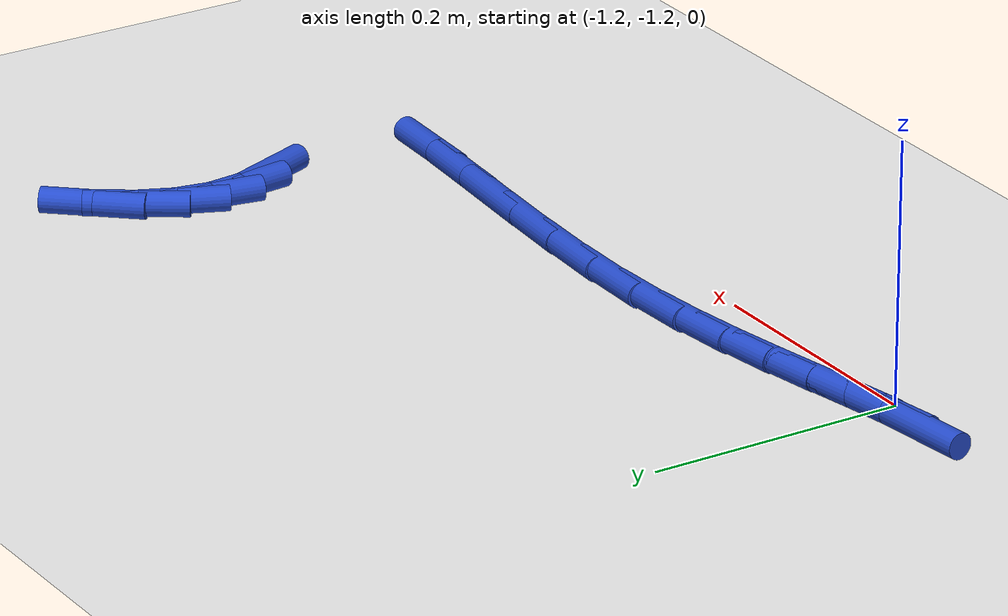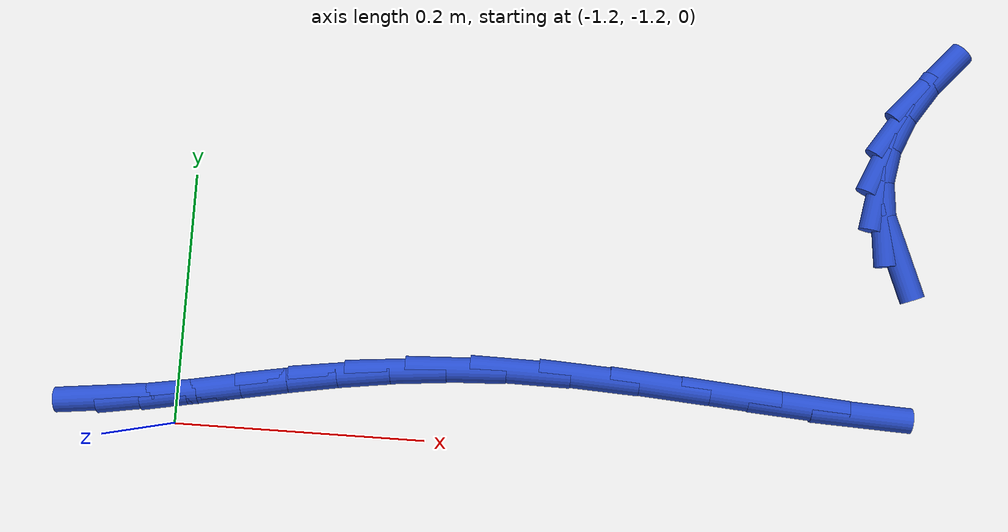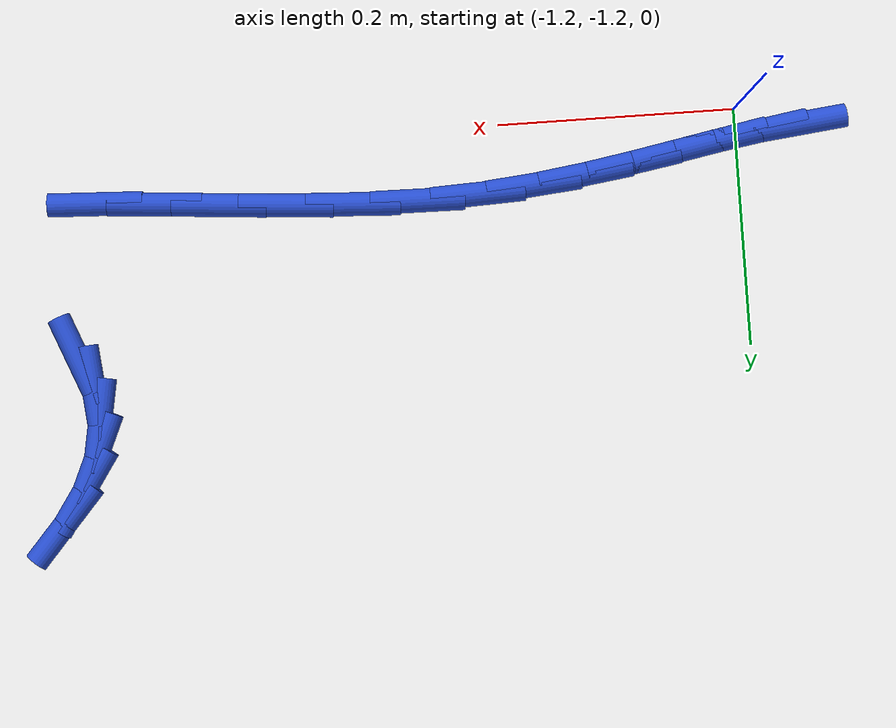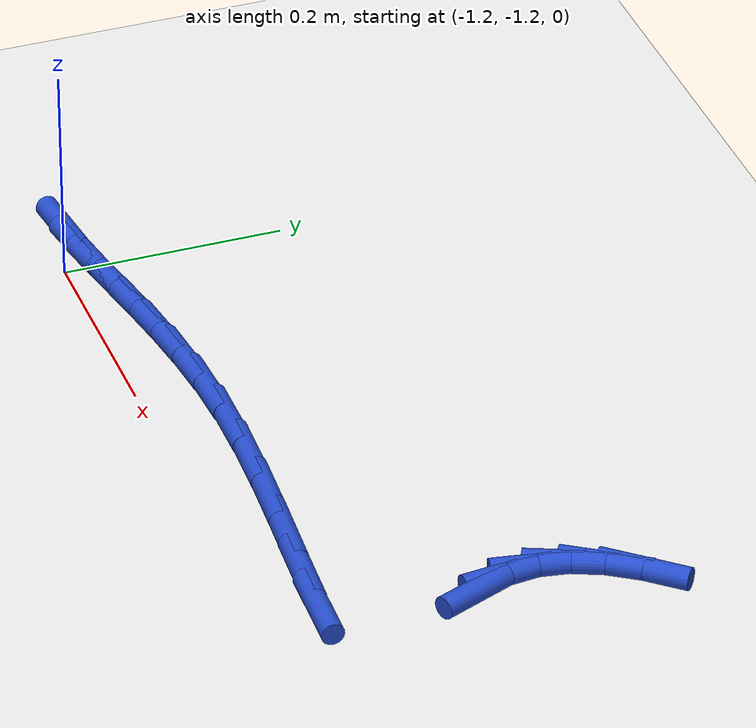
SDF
<sdf version="1.6">
 <world name="default">
  <model name="ground_plane">
   <static>1</static>
   <link name="link">
    <collision name="collision">
     <geometry><plane><normal>0 0 1</normal><size>100 100</size></plane></geometry>
     <surface><friction><ode><mu>100</mu><mu2>50</mu2></ode></friction></surface>
    </collision>
    <visual name="visual">
     <cast_shadows>0</cast_shadows>
     <geometry><plane><normal>0 0 1</normal><size>100 100</size></plane></geometry>
     <material>
      <script><uri>file://media/materials/scripts/gazebo.material</uri><name>Gazebo/WhiteGlow</name></script>
     </material>
    </visual>
   </link>
  </model>
  <model name="line">
   <link name="link_185">
    <pose>-1.2535205505222573 -1.1832049331797498 0.01 0 1.57 0.11238315711783482</pose>
    <collision name="collision">
     <geometry><cylinder><radius>0.01</radius><length>0.08</length></cylinder></geometry>
    </collision>
    <visual name="visual">
     <material>
      <script><name>Gazebo/Blue</name><uri>file://media/materials/scripts/gazebo.material</uri></script>
     </material>
     <geometry><cylinder><radius>0.01</radius><length>0.08</length></cylinder></geometry>
    </visual>
   </link>
   <link name="link_186">
    <pose>-1.2209072819353695 -1.1795242423524888 0.01 0 1.57 0.16147729511556594</pose>
    <collision name="collision">
     <geometry><cylinder><radius>0.01</radius><length>0.08</length></cylinder></geometry>
    </collision>
    <visual name="visual">
     <material>
      <script><name>Gazebo/Blue</name><uri>file://media/materials/scripts/gazebo.material</uri></script>
     </material>
     <geometry><cylinder><radius>0.01</radius><length>0.08</length></cylinder></geometry>
    </visual>
   </link>
   <link name="link_187">
    <pose>-1.1865834663665964 -1.1739330440925617 0.01 0 1.57 0.18472394747360218</pose>
    <collision name="collision">
     <geometry><cylinder><radius>0.01</radius><length>0.08</length></cylinder></geometry>
    </collision>
    <visual name="visual">
     <material>
      <script><name>Gazebo/Blue</name><uri>file://media/materials/scripts/gazebo.material</uri></script>
     </material>
     <geometry><cylinder><radius>0.01</radius><length>0.08</length></cylinder></geometry>
    </visual>
   </link>
   <link name="link_188">
    <pose>-1.1502440654019912 -1.1671428767453884 0.01 0 1.57 0.18606859323126612</pose>
    <collision name="collision">
     <geometry><cylinder><radius>0.01</radius><length>0.08</length></cylinder></geometry>
    </collision>
    <visual name="visual">
     <material>
      <script><name>Gazebo/Blue</name><uri>file://media/materials/scripts/gazebo.material</uri></script>
     </material>
     <geometry><cylinder><radius>0.01</radius><length>0.08</length></cylinder></geometry>
    </visual>
   </link>
   <link name="link_189">
    <pose>-1.1115840406276083 -1.159865278656389 0.01 0 1.57 0.16921218535501945</pose>
    <collision name="collision">
     <geometry><cylinder><radius>0.01</radius><length>0.08</length></cylinder></geometry>
    </collision>
    <visual name="visual">
     <material>
      <script><name>Gazebo/Blue</name><uri>file://media/materials/scripts/gazebo.material</uri></script>
     </material>
     <geometry><cylinder><radius>0.01</radius><length>0.08</length></cylinder></geometry>
    </visual>
   </link>
   <link name="link_190">
    <pose>-1.0702983536295008 -1.1528117881709825 0.01 0 1.57 0.13748855227635906</pose>
    <collision name="collision">
     <geometry><cylinder><radius>0.01</radius><length>0.08</length></cylinder></geometry>
    </collision>
    <visual name="visual">
     <material>
      <script><name>Gazebo/Blue</name><uri>file://media/materials/scripts/gazebo.material</uri></script>
     </material>
     <geometry><cylinder><radius>0.01</radius><length>0.08</length></cylinder></geometry>
    </visual>
   </link>
   <link name="link_191">
    <pose>-1.0260819659937228 -1.1466939436345889 0.01 0 1.57 0.09393683521952927</pose>
    <collision name="collision">
     <geometry><cylinder><radius>0.01</radius><length>0.08</length></cylinder></geometry>
    </collision>
    <visual name="visual">
     <material>
      <script><name>Gazebo/Blue</name><uri>file://media/materials/scripts/gazebo.material</uri></script>
     </material>
     <geometry><cylinder><radius>0.01</radius><length>0.08</length></cylinder></geometry>
    </visual>
   </link>
   <link name="link_192">
    <pose>-0.9786298393063269 -1.1422232833926278 0.01 0 1.57 0.04139264738351225</pose>
    <collision name="collision">
     <geometry><cylinder><radius>0.01</radius><length>0.08</length></cylinder></geometry>
    </collision>
    <visual name="visual">
     <material>
      <script><name>Gazebo/Blue</name><uri>file://media/materials/scripts/gazebo.material</uri></script>
     </material>
     <geometry><cylinder><radius>0.01</radius><length>0.08</length></cylinder></geometry>
    </visual>
   </link>
   <link name="link_193">
    <pose>-0.9276369351533698 -1.1401113457905199 0.01 0 1.57 -0.013002217775532286</pose>
    <collision name="collision">
     <geometry><cylinder><radius>0.01</radius><length>0.08</length></cylinder></geometry>
    </collision>
    <visual name="visual">
     <material>
      <script><name>Gazebo/Blue</name><uri>file://media/materials/scripts/gazebo.material</uri></script>
     </material>
     <geometry><cylinder><radius>0.01</radius><length>0.08</length></cylinder></geometry>
    </visual>
   </link>
   <link name="link_194">
    <pose>-0.8731454839633218 -1.140819895434831 0.01 0 1.57 -0.0509025198360182</pose>
    <collision name="collision">
     <geometry><cylinder><radius>0.01</radius><length>0.08</length></cylinder></geometry>
    </collision>
    <visual name="visual">
     <material>
      <script><name>Gazebo/Blue</name><uri>file://media/materials/scripts/gazebo.material</uri></script>
     </material>
     <geometry><cylinder><radius>0.01</radius><length>0.08</length></cylinder></geometry>
    </visual>
   </link>
   <link name="link_195">
    <pose>-0.8167517422856034 -1.1436929608524948 0.01 0 1.57 -0.07219383479327106</pose>
    <collision name="collision">
     <geometry><cylinder><radius>0.01</radius><length>0.08</length></cylinder></geometry>
    </collision>
    <visual name="visual">
     <material>
      <script><name>Gazebo/Blue</name><uri>file://media/materials/scripts/gazebo.material</uri></script>
     </material>
     <geometry><cylinder><radius>0.01</radius><length>0.08</length></cylinder></geometry>
    </visual>
   </link>
   <link name="link_196">
    <pose>-0.7604864930495749 -1.1477620366909524 0.01 0 1.57 -0.07924394019761066</pose>
    <collision name="collision">
     <geometry><cylinder><radius>0.01</radius><length>0.08</length></cylinder></geometry>
    </collision>
    <visual name="visual">
     <material>
      <script><name>Gazebo/Blue</name><uri>file://media/materials/scripts/gazebo.material</uri></script>
     </material>
     <geometry><cylinder><radius>0.01</radius><length>0.08</length></cylinder></geometry>
    </visual>
   </link>
   <link name="link_197">
    <pose>-0.7063805395071159 -1.1520586029806357 0.01 0 1.57 -0.07111050546324979</pose>
    <collision name="collision">
     <geometry><cylinder><radius>0.01</radius><length>0.08</length></cylinder></geometry>
    </collision>
    <visual name="visual">
     <material>
      <script><name>Gazebo/Blue</name><uri>file://media/materials/scripts/gazebo.material</uri></script>
     </material>
     <geometry><cylinder><radius>0.01</radius><length>0.08</length></cylinder></geometry>
    </visual>
   </link>
   <link name="link_198">
    <pose>-0.656464684910106 -1.1556141397519772 0.01 0 1.57 -0.04222204405604409</pose>
    <collision name="collision">
     <geometry><cylinder><radius>0.01</radius><length>0.08</length></cylinder></geometry>
    </collision>
    <visual name="visual">
     <material>
      <script><name>Gazebo/Blue</name><uri>file://media/materials/scripts/gazebo.material</uri></script>
     </material>
     <geometry><cylinder><radius>0.01</radius><length>0.08</length></cylinder></geometry>
    </visual>
   </link>
   <link name="link_207">
    <pose>-0.6343042874594569 -1.0245026421503616 0.01 0 1.57 -1.190024131418308</pose>
    <collision name="collision">
     <geometry><cylinder><radius>0.01</radius><length>0.08</length></cylinder></geometry>
    </collision>
    <visual name="visual">
     <material>
      <script><name>Gazebo/Blue</name><uri>file://media/materials/scripts/gazebo.material</uri></script>
     </material>
     <geometry><cylinder><radius>0.01</radius><length>0.08</length></cylinder></geometry>
    </visual>
   </link>
   <link name="link_208">
    <pose>-0.6454438697331666 -0.996675140216671 0.01 0 1.57 -1.4672746894986235</pose>
    <collision name="collision">
     <geometry><cylinder><radius>0.01</radius><length>0.08</length></cylinder></geometry>
    </collision>
    <visual name="visual">
     <material>
      <script><name>Gazebo/Blue</name><uri>file://media/materials/scripts/gazebo.material</uri></script>
     </material>
     <geometry><cylinder><radius>0.01</radius><length>0.08</length></cylinder></geometry>
    </visual>
   </link>
   <link name="link_209">
    <pose>-0.648293443006181 -0.9692471870026478 0.01 0 1.57 1.3984833834354846</pose>
    <collision name="collision">
     <geometry><cylinder><radius>0.01</radius><length>0.08</length></cylinder></geometry>
    </collision>
    <visual name="visual">
     <material>
      <script><name>Gazebo/Blue</name><uri>file://media/materials/scripts/gazebo.material</uri></script>
     </material>
     <geometry><cylinder><radius>0.01</radius><length>0.08</length></cylinder></geometry>
    </visual>
   </link>
   <link name="link_210">
    <pose>-0.6435770272010394 -0.942147402708022 0.01 0 1.57 1.164198567611379</pose>
    <collision name="collision">
     <geometry><cylinder><radius>0.01</radius><length>0.08</length></cylinder></geometry>
    </collision>
    <visual name="visual">
     <material>
      <script><name>Gazebo/Blue</name><uri>file://media/materials/scripts/gazebo.material</uri></script>
     </material>
     <geometry><cylinder><radius>0.01</radius><length>0.08</length></cylinder></geometry>
    </visual>
   </link>
   <link name="link_211">
    <pose>-0.6320186422402813 -0.9153044075325247 0.01 0 1.57 0.9852751235286996</pose>
    <collision name="collision">
     <geometry><cylinder><radius>0.01</radius><length>0.08</length></cylinder></geometry>
    </collision>
    <visual name="visual">
     <material>
      <script><name>Gazebo/Blue</name><uri>file://media/materials/scripts/gazebo.material</uri></script>
     </material>
     <geometry><cylinder><radius>0.01</radius><length>0.08</length></cylinder></geometry>
    </visual>
   </link>
   <link name="link_212">
    <pose>-0.6143423080464453 -0.8886468216758867 0.01 0 1.57 0.8552906926014902</pose>
    <collision name="collision">
     <geometry><cylinder><radius>0.01</radius><length>0.08</length></cylinder></geometry>
    </collision>
    <visual name="visual">
     <material>
      <script><name>Gazebo/Blue</name><uri>file://media/materials/scripts/gazebo.material</uri></script>
     </material>
     <geometry><cylinder><radius>0.01</radius><length>0.08</length></cylinder></geometry>
    </visual>
   </link>
  </model>
 </world>
</sdf>
